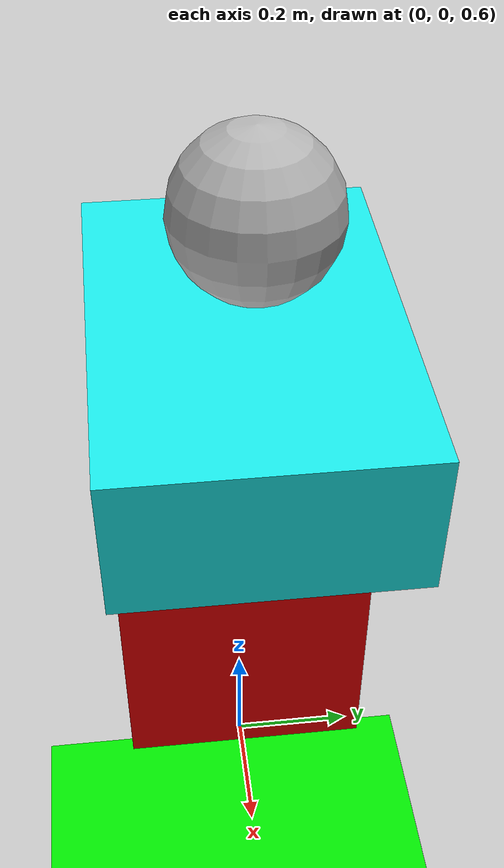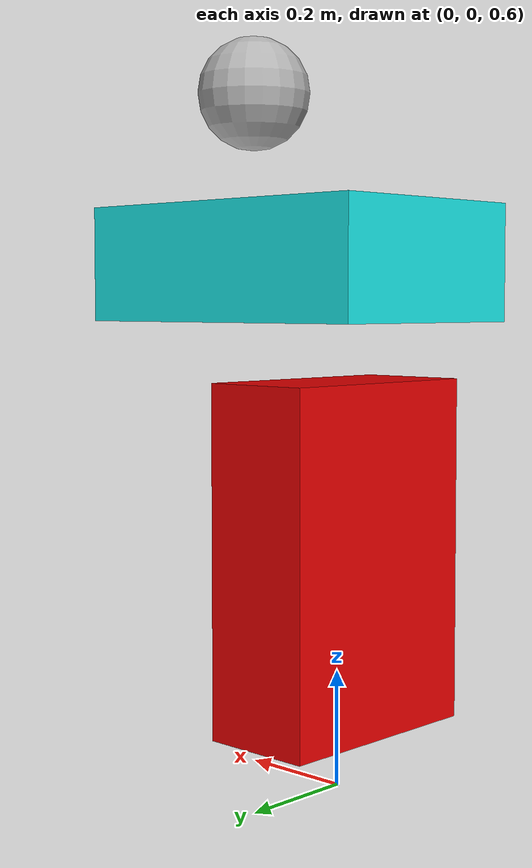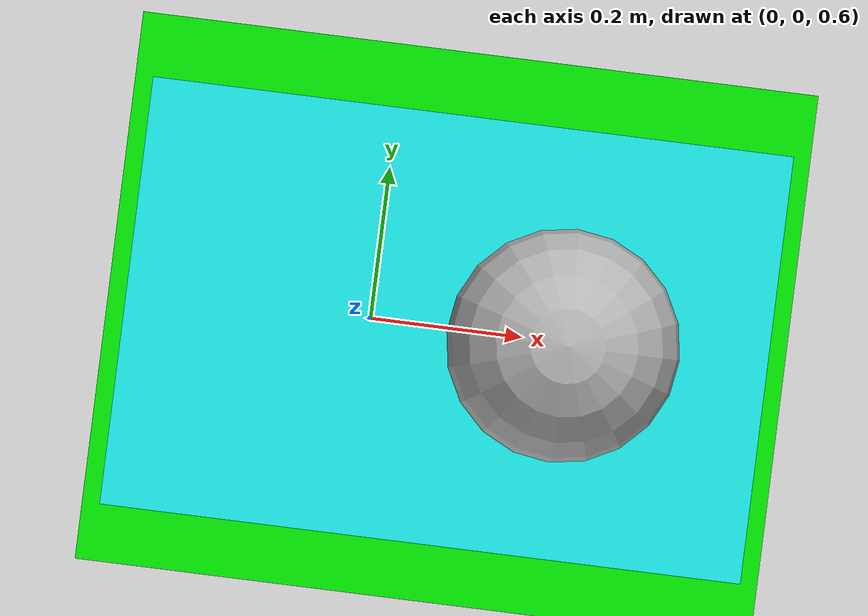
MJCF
<mujoco>
  <option gravity="0 0 -9.81" />
    <worldbody>
      <light diffuse=".5 .5 .5" pos="0 0 3" dir="0 0 -1"/>
      <geom type="plane" size="1 1 0.1" rgba="0 0.9 0 1"/>
      <body pos="0 0 1">
        <joint type="free"/>
        <geom type="box" size=".1 .2 .3" rgba="0.9 0 0 1"/>
      </body>
      <body pos="0.1 0 1.5" euler="0 90 0">
<!-- euler is for rotating the body with changing second value 0 to 90 we rotate the body around y axis-->
        <joint type="free"/>
        <geom type="box" size=".1 .2 .3" rgba="0.1 0.9 0.9 1"/>
      </body>
      <body pos="0.2 0 1.8">
        <joint type="free"/>
        <geom type="sphere" size=".1" rgba="0.7 0.7 0.7 1"/>
      </body>
    </worldbody>
  </mujoco>
